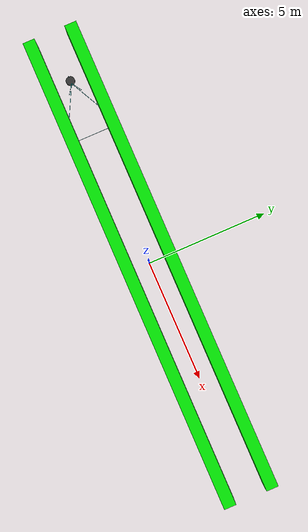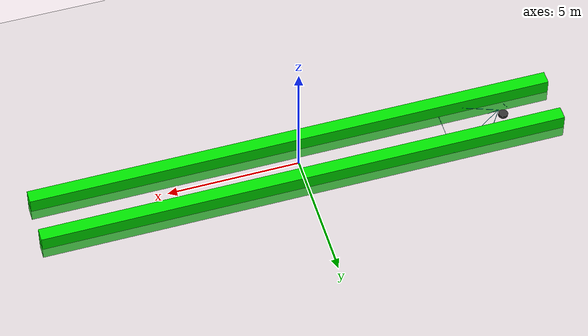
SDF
<?xml version="1.0"?>
<sdf version="1.6">
  <world name="crops_world">
    <!-- ground and sun -->
    <include>
      <uri>model://ground_plane</uri>
    </include>
    <include>
      <uri>model://sun</uri>
    </include>

    <!-- crop rows -->
    <model name="crop_row_1">
      <static>true</static>
      <pose>0 0.9 0.025 0 0 0</pose>
      <link name="row_link_1">
        <collision name="collision">
          <geometry><box><size>20 0.5 1.05</size></box></geometry>
        </collision>
        <visual name="visual">
          <geometry><box><size>20 0.5 1.05</size></box></geometry>
          <material>
            <ambient>0 0.9 0 1</ambient>
            <diffuse>0 0.9 0 1</diffuse>
            <emissive>0 0.6 0 1</emissive>
          </material>
        </visual>
      </link>
    </model>

    <model name="crop_row_2">
      <static>true</static>
      <pose>0 -0.9 0.025 0 0 0</pose>
      <link name="row_link_2">
        <collision name="collision">
          <geometry><box><size>20 0.5 1.05</size></box></geometry>
        </collision>
        <visual name="visual">
          <geometry><box><size>20 0.5 1.05</size></box></geometry>
          <material>
            <ambient>0 0.9 0 1</ambient>
            <diffuse>0 0.9 0 1</diffuse>
            <emissive>0 0.6 0 1</emissive>
          </material>
        </visual>
      </link>
    </model>

    <!-- robot (planar move, no wheels) -->
    <model name="row_bot">
      <!-- start slightly left so controller must recover -->
      <pose>-8 0 0.1 0 0 0</pose>

      <link name="base">
        <inertial>
          <mass>10.0</mass>
          <inertia>
            <ixx>0.1</ixx><ixy>0</ixy><ixz>0</ixz>
            <iyy>0.1</iyy><iyz>0</iyz>
            <izz>0.1</izz>
          </inertia>
        </inertial>
        <collision name="collision">
          <geometry><cylinder><radius>0.18</radius><length>0.10</length></cylinder></geometry>
        </collision>
        <visual name="visual">
          <geometry><cylinder><radius>0.18</radius><length>0.10</length></cylinder></geometry>
          <material>
            <ambient>0.2 0.2 0.2 1</ambient>
            <diffuse>0.2 0.2 0.2 1</diffuse>
          </material>
        </visual>
      </link>

      <!-- camera -->
      <link name="camera_link">
        <!-- pitch = 0.60 rad as requested -->
        <pose>0.20 0 0.32 0 0.60 0</pose>
        <inertial>
          <mass>0.2</mass>
          <inertia>
            <ixx>0.0005</ixx><ixy>0</ixy><ixz>0</ixz>
            <iyy>0.0005</iyy><iyz>0</iyz>
            <izz>0.0005</izz>
          </inertia>
        </inertial>

        <sensor name="camera" type="camera">
          <always_on>true</always_on>
          <update_rate>30</update_rate>
          <camera>
            <!-- ~60 deg HFOV -->
            <horizontal_fov>1.047</horizontal_fov>
            <image>
              <width>640</width>
              <height>480</height>
              <format>R8G8B8</format>
            </image>
            <clip>
              <near>0.05</near>
              <far>50</far>
            </clip>
          </camera>
          <plugin name="gazebo_ros_camera" filename="libgazebo_ros_camera.so">
            <ros_namespace>/</ros_namespace>
            <camera_name>camera</camera_name>
            <frame_name>camera_link</frame_name>
            <image_topic_name>camera/image_raw</image_topic_name>
            <camera_info_topic_name>camera/camera_info</camera_info_topic_name>
            <update_rate>30</update_rate>
          </plugin>
        </sensor>

        <!-- === Camera frustum visualization (visual-only, no collision) === -->
        <!-- Parameters derived from HFOV=1.047 rad, 4:3 aspect; near=0.05 m; far viz=2.0 m -->

        <!-- Near frame -->
        <visual name="frustum_near">
          <pose>0.05 0 0 0 0 0</pose> <!-- x = near -->
          <geometry>
            <!-- thickness, width=2*wN≈0.0577, height=2*hN≈0.0433 -->
            <box><size>0.002 0.0577 0.0433</size></box>
          </geometry>
          <material>
            <ambient>0 1 1 1</ambient>
            <diffuse>0 1 1 1</diffuse>
            <emissive>0 0.7 0.7 1</emissive>
          </material>
          <transparency>0.3</transparency>
          <cast_shadows>false</cast_shadows>
        </visual>

        <!-- Far frame (visualization at 2.0 m) -->
        <visual name="frustum_far">
          <pose>2.0 0 0 0 0 0</pose>
          <geometry>
            <!-- thickness, width=2*wF≈2.309, height=2*hF≈1.732 -->
            <box><size>0.002 2.309 1.732</size></box>
          </geometry>
          <material>
            <ambient>0 1 1 1</ambient>
            <diffuse>0 1 1 1</diffuse>
            <emissive>0 0.7 0.7 1</emissive>
          </material>
          <transparency>0.6</transparency>
          <cast_shadows>false</cast_shadows>
        </visual>

        <!-- Center axis (optional) -->
        <visual name="frustum_axis">
          <!-- place behind camera: x = -0.3 m -->
          <pose>-0.3 0 0 0 0 0</pose>
          <geometry>
            <cylinder>
              <radius>0.005</radius>
              <length>0.3</length>
            </cylinder>
          </geometry>
          <material>
            <ambient>0 1 1 1</ambient>
            <diffuse>0 1 1 1</diffuse>
          </material>
          <transparency>0.3</transparency>
          <cast_shadows>false</cast_shadows>
        </visual>

        <!-- Four corner rays (approx length L≈2.468), oriented to far-plane corners -->
        <!-- Top-Left corner vector: (2.0, +1.1547, +0.8660) -->
        <visual name="frustum_ray_TL">
          <pose>1.0 0.577 0.433 0 -0.359 0.524</pose>
          <geometry><box><size>2.468 0.01 0.01</size></box></geometry>
          <material><ambient>0 1 1 1</ambient><diffuse>0 1 1 1</diffuse></material>
          <transparency>0.2</transparency><cast_shadows>false</cast_shadows>
        </visual>

        <!-- Top-Right: (2.0, -1.1547, +0.8660) -->
        <visual name="frustum_ray_TR">
          <pose>1.0 -0.577 0.433 0 -0.359 -0.524</pose>
          <geometry><box><size>2.468 0.01 0.01</size></box></geometry>
          <material><ambient>0 1 1 1</ambient><diffuse>0 1 1 1</diffuse></material>
          <transparency>0.2</transparency><cast_shadows>false</cast_shadows>
        </visual>

        <!-- Bottom-Left: (2.0, +1.1547, -0.8660) -->
        <visual name="frustum_ray_BL">
          <pose>1.0 0.577 -0.433 0 0.359 0.524</pose>
          <geometry><box><size>2.468 0.01 0.01</size></box></geometry>
          <material><ambient>0 1 1 1</ambient><diffuse>0 1 1 1</diffuse></material>
          <transparency>0.2</transparency><cast_shadows>false</cast_shadows>
        </visual>

        <!-- Bottom-Right: (2.0, -1.1547, -0.8660) -->
        <visual name="frustum_ray_BR">
          <pose>1.0 -0.577 -0.433 0 0.359 -0.524</pose>
          <geometry><box><size>2.468 0.01 0.01</size></box></geometry>
          <material><ambient>0 1 1 1</ambient><diffuse>0 1 1 1</diffuse></material>
          <transparency>0.2</transparency><cast_shadows>false</cast_shadows>
        </visual>
        <!-- === /Camera frustum visualization === -->

      </link>

      <!-- fixed joint: base -> camera -->
      <joint name="base_to_camera" type="fixed">
        <parent>base</parent>
        <child>camera_link</child>
      </joint>

      <!-- planar move plugin listens to /cmd_vel and moves base in XY plane -->
      <plugin name="planar_move" filename="libgazebo_ros_planar_move.so">
        <ros_namespace>/</ros_namespace>
        <command_topic>cmd_vel</command_topic>
        <odometry_topic>odom</odometry_topic>
        <odometry_frame>odom</odometry_frame>
        <robot_base_frame>base</robot_base_frame>
      </plugin>
    </model>
  </world>
</sdf>
